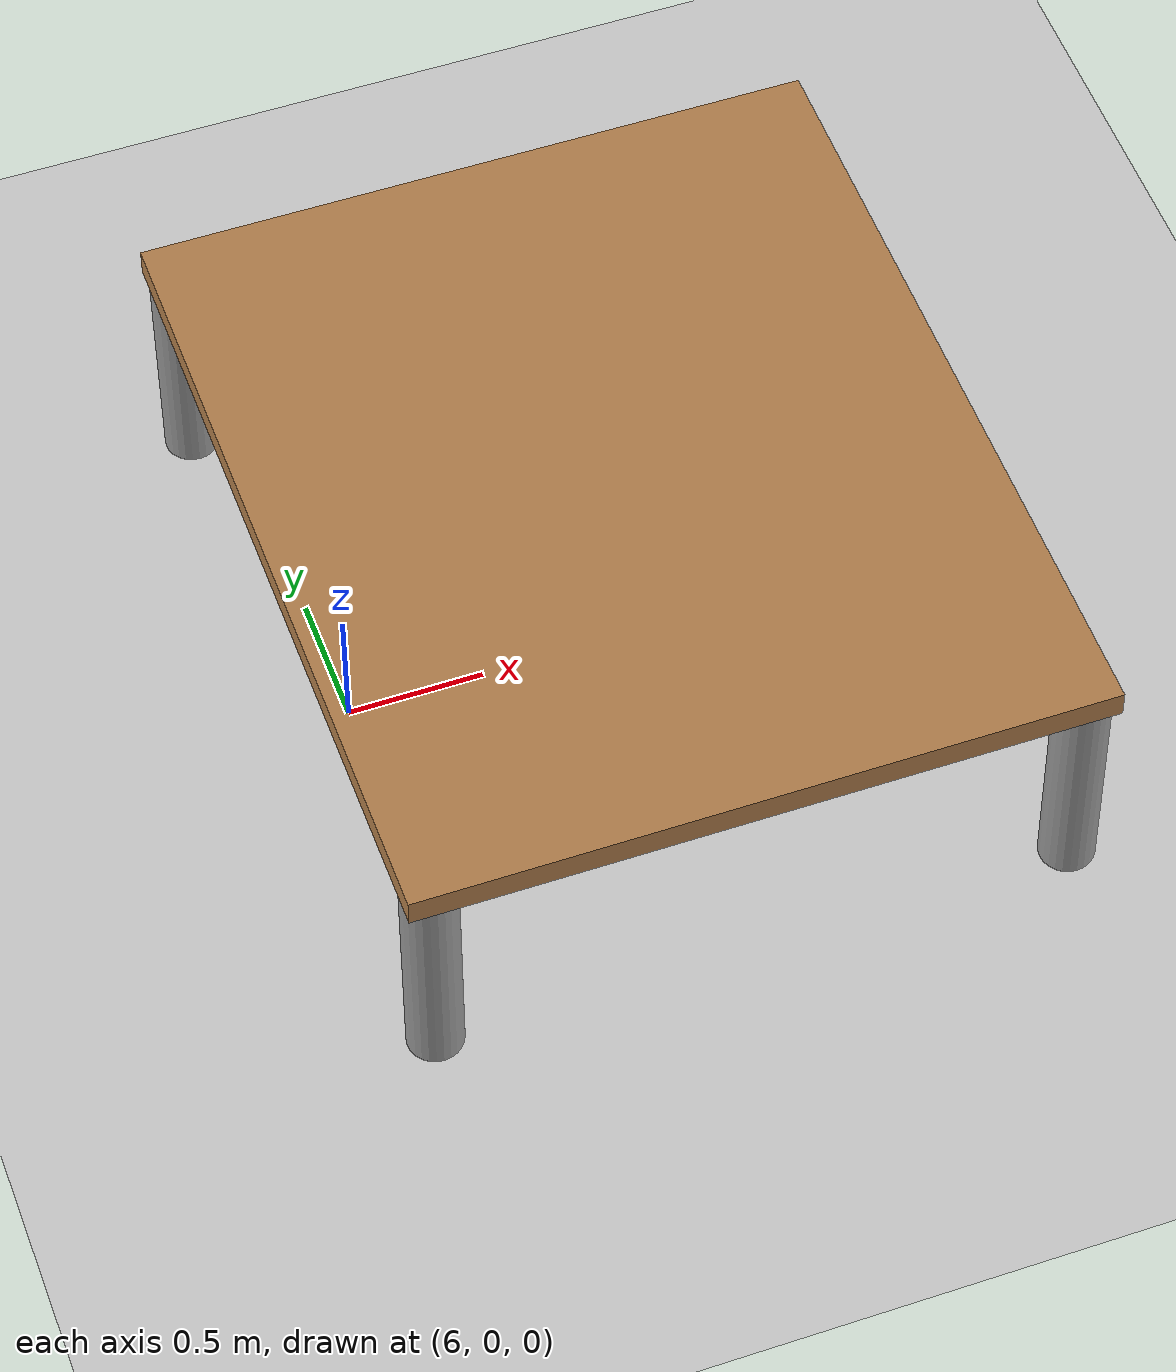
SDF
<?xml version="1.0" ?>
<sdf version="1.4">
  <world name="default">

    <model name="table">
      <static>true</static>
      <pose>7 0 0 0 0 0</pose>

      <link name="link">
        <collision name="surface">
          <pose>0 0 .9 0 0 0</pose>
          <geometry>
            <box>
              <size>2.5 3 0.1</size>
            </box>
          </geometry>
          <surface>
            <friction>
              <ode>
                <mu>0.6</mu>
                <mu2>0.6</mu2>
              </ode>
            </friction>
          </surface>
        </collision>
        <visual name="visual1">
          <pose>0 0 .9 0 0 0</pose>
          <geometry>
            <box>
              <size>2.5 3 0.1</size>
            </box>
          </geometry>
          <material>
            <script>
              <uri>file://media/materials/scripts/gazebo.material</uri>
              <name>Gazebo/Wood</name>
            </script>
          </material>
        </visual>
        <collision name="front_left_leg">
          <pose>1.15 1.4 0.425 0 0 0</pose>
          <geometry>
            <cylinder>
              <radius>0.1</radius>
              <length>0.85</length>
            </cylinder>
          </geometry>
        </collision>
        <visual name="front_left_leg">
          <pose>1.15 1.4 0.425 0 0 0</pose>
          <geometry>
            <cylinder>
              <radius>0.1</radius>
              <length>0.85</length>
            </cylinder>
          </geometry>
          <material>
            <script>
              <uri>file://media/materials/scripts/gazebo.material</uri>
              <name>Gazebo/Grey</name>
            </script>
          </material>
        </visual>
        <collision name="front_right_leg">
          <pose>1.15 -1.4 0.425 0 0 0</pose>
          <geometry>
            <cylinder>
              <radius>0.1</radius>
              <length>0.85</length>
            </cylinder>
          </geometry>
        </collision>
        <visual name="front_right_leg">
          <pose>1.15 -1.4 0.425 0 0 0</pose>
          <geometry>
            <cylinder>
              <radius>0.1</radius>
              <length>0.85</length>
            </cylinder>
          </geometry>
          <material>
            <script>
              <uri>file://media/materials/scripts/gazebo.material</uri>
              <name>Gazebo/Grey</name>
            </script>
          </material>
        </visual>
        <collision name="back_right_leg">
          <pose>-1.15 -1.4 0.425 0 0 0</pose>
          <geometry>
            <cylinder>
              <radius>0.1</radius>
              <length>0.85</length>
            </cylinder>
          </geometry>
        </collision>
        <visual name="back_right_leg">
          <pose>-1.15 -1.4 0.425 0 0 0</pose>
          <geometry>
            <cylinder>
              <radius>0.1</radius>
              <length>0.85</length>
            </cylinder>
          </geometry>
          <material>
            <script>
              <uri>file://media/materials/scripts/gazebo.material</uri>
              <name>Gazebo/Grey</name>
            </script>
          </material>
        </visual>
        <collision name="back_left_leg">
          <pose>-1.15 1.4 0.425 0 0 0</pose>
          <geometry>
            <cylinder>
              <radius>0.1</radius>
              <length>0.85</length>
            </cylinder>
          </geometry>
        </collision>
        <visual name="back_left_leg">
          <pose>-1.15 1.4 0.425 0 0 0</pose>
          <geometry>
            <cylinder>
              <radius>0.1</radius>
              <length>0.85</length>
            </cylinder>
          </geometry>
          <material>
            <script>
              <uri>file://media/materials/scripts/gazebo.material</uri>
              <name>Gazebo/Grey</name>
            </script>
          </material>
        </visual>
      </link>
    </model>

    <include>
      <uri>model://ground_plane</uri>
    </include>

    <include>
      <uri>model://sun</uri>
    </include>

    <!-- reference to your plugin -->
    <plugin name="gazebo_tutorials" filename="libgazebo_tutorials.so"/>
  </world>
</sdf>
